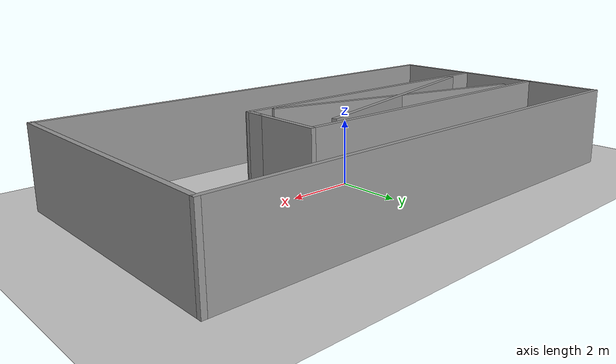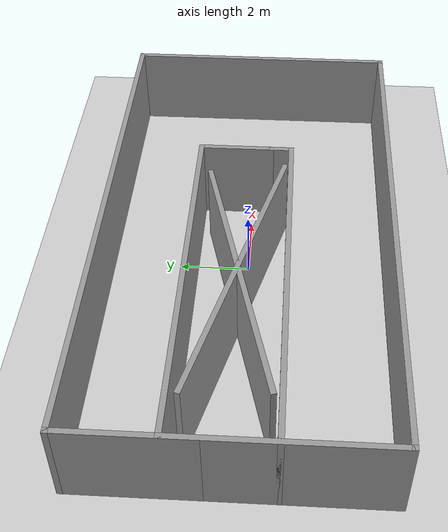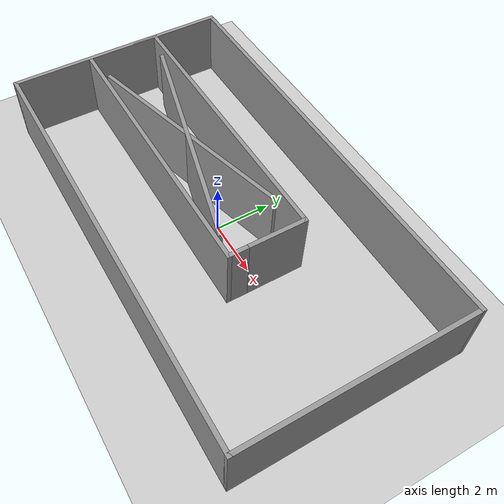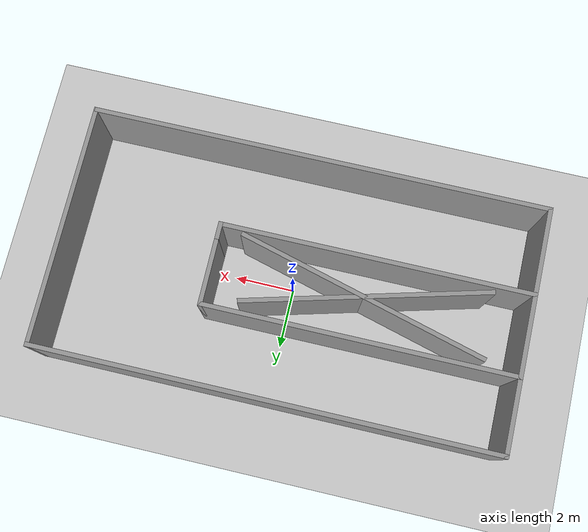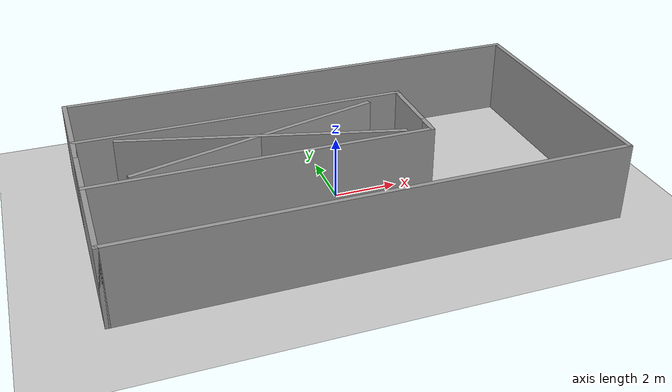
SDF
<sdf version="1.7">
 <world name="default">
  <plugin name="gazebo_ros_api_plugin" filename="libgazebo_ros_api_plugin.so"/>
  <light name="sun" type="directional">
   <pose>0 0 10 0 -0 0</pose>
   <diffuse>0.8 0.8 0.8 1</diffuse>
   <specular>0.2 0.2 0.2 1</specular>
   <attenuation>
    <range>1000</range>
    <constant>0.9</constant>
    <linear>0.01</linear>
    <quadratic>0.001</quadratic>
   </attenuation>
   <direction>-0.5 0.1 -0.9</direction>
   <spot><inner_angle>0</inner_angle><outer_angle>0</outer_angle><falloff>0</falloff></spot>
  </light>
  <model name="ground_plane">
   <static>1</static>
   <link name="link">
    <collision name="collision">
     <geometry><plane><normal>0 0 1</normal><size>100 100</size></plane></geometry>
     <surface>
      <contact><collide_bitmask>65535</collide_bitmask></contact>
      <friction><ode><mu>100</mu><mu2>50</mu2></ode></friction>
     </surface>
    </collision>
    <visual name="visual">
     <cast_shadows>0</cast_shadows>
     <geometry><plane><normal>0 0 1</normal><size>100 100</size></plane></geometry>
     <material>
      <script><uri>file://media/materials/scripts/gazebo.material</uri><name>Gazebo/Grey</name></script>
     </material>
    </visual>
   </link>
  </model>
  <gravity>0 0 -9.8</gravity>
  <magnetic_field>6e-06 2.3e-05 -4.2e-05</magnetic_field>
  <atmosphere type="adiabatic"/>
  <physics type="ode">
   <max_step_size>0.001</max_step_size>
   <real_time_factor>1</real_time_factor>
   <real_time_update_rate>1000</real_time_update_rate>
  </physics>
  <scene><ambient>0.4 0.4 0.4 1</ambient><background>0.7 0.7 0.7 1</background><shadows>1</shadows></scene>
  <spherical_coordinates>
   <surface_model>EARTH_WGS84</surface_model>
   <latitude_deg>0</latitude_deg>
   <longitude_deg>0</longitude_deg>
   <elevation>0</elevation>
   <heading_deg>0</heading_deg>
  </spherical_coordinates>
  <model name="small_room">
   <link name="Wall_0">
    <collision name="Wall_0_Collision">
     <geometry><box><size>5.75 0.15 2.5</size></box></geometry>
     <pose>0 0 1.25 0 -0 0</pose>
    </collision>
    <visual name="Wall_0_Visual">
     <pose>0 0 1.25 0 -0 0</pose>
     <geometry><box><size>5.75 0.15 2.5</size></box></geometry>
     <material>
      <script><uri>file://media/materials/scripts/gazebo.material</uri><name>Gazebo/Grey</name></script>
      <ambient>1 1 1 1</ambient>
     </material>
     <meta><layer>0</layer></meta>
    </visual>
    <pose>-7.675 -1.25 0 0 -0 -1.5708</pose>
   </link>
   <link name="Wall_1">
    <collision name="Wall_1_Collision">
     <geometry><box><size>15.5 0.15 2.5</size></box></geometry>
     <pose>0 0 1.25 0 -0 0</pose>
    </collision>
    <visual name="Wall_1_Visual">
     <pose>0 0 1.25 0 -0 0</pose>
     <geometry><box><size>15.5 0.15 2.5</size></box></geometry>
     <material>
      <script><uri>file://media/materials/scripts/gazebo.material</uri><name>Gazebo/Grey</name></script>
      <ambient>1 1 1 1</ambient>
     </material>
     <meta><layer>0</layer></meta>
    </visual>
    <pose>-0 -4.05 0 0 -0 0</pose>
   </link>
   <link name="Wall_10">
    <collision name="Wall_10_Collision">
     <geometry><box><size>0.75 0.15 2.5</size></box></geometry>
     <pose>0 0 1.25 0 -0 0</pose>
    </collision>
    <visual name="Wall_10_Visual">
     <pose>0 0 1.25 0 -0 0</pose>
     <geometry><box><size>0.75 0.15 2.5</size></box></geometry>
     <material>
      <script><uri>file://media/materials/scripts/gazebo.material</uri><name>Gazebo/Grey</name></script>
      <ambient>1 1 1 1</ambient>
     </material>
     <meta><layer>0</layer></meta>
    </visual>
    <pose>2.675 -0.85 0 0 -0 -1.5708</pose>
   </link>
   <link name="Wall_11">
    <collision name="Wall_11_Collision">
     <geometry><box><size>10.5 0.15 2.5</size></box></geometry>
     <pose>0 0 1.25 0 -0 0</pose>
    </collision>
    <visual name="Wall_11_Visual">
     <pose>0 0 1.25 0 -0 0</pose>
     <geometry><box><size>10.5 0.15 2.5</size></box></geometry>
     <material>
      <script><uri>file://media/materials/scripts/gazebo.material</uri><name>Gazebo/Grey</name></script>
      <ambient>1 1 1 1</ambient>
     </material>
     <meta><layer>0</layer></meta>
    </visual>
    <pose>-2.5 -1.15 0 0 -0 3.14159</pose>
   </link>
   <link name="Wall_13">
    <collision name="Wall_13_Collision">
     <geometry><box><size>8.75 0.15 2.5</size></box></geometry>
     <pose>0 0 1.25 0 -0 0</pose>
    </collision>
    <visual name="Wall_13_Visual">
     <pose>0 0 1.25 0 -0 0</pose>
     <geometry><box><size>8.75 0.15 2.5</size></box></geometry>
     <material>
      <script><uri>file://media/materials/scripts/gazebo.material</uri><name>Gazebo/Grey</name></script>
      <ambient>1 1 1 1</ambient>
     </material>
     <meta><layer>0</layer></meta>
    </visual>
    <pose>-2.29459 0.135374 0 0 -0 -0.261799</pose>
   </link>
   <link name="Wall_15">
    <collision name="Wall_15_Collision">
     <geometry><box><size>8.25 0.15 2.5</size></box></geometry>
     <pose>0 0 1.25 0 -0 0</pose>
    </collision>
    <visual name="Wall_15_Visual">
     <pose>0 0 1.25 0 -0 0</pose>
     <geometry><box><size>8.25 0.15 2.5</size></box></geometry>
     <material>
      <script><uri>file://media/materials/scripts/gazebo.material</uri><name>Gazebo/Grey</name></script>
      <ambient>1 1 1 1</ambient>
     </material>
     <meta><layer>0</layer></meta>
    </visual>
    <pose>-2.43551 0.124248 0 0 -0 0.261799</pose>
   </link>
   <link name="Wall_2">
    <collision name="Wall_2_Collision">
     <geometry><box><size>8.25 0.15 2.5</size></box></geometry>
     <pose>0 0 1.25 0 -0 0</pose>
    </collision>
    <visual name="Wall_2_Visual">
     <pose>0 0 1.25 0 -0 0</pose>
     <geometry><box><size>8.25 0.15 2.5</size></box></geometry>
     <material>
      <script><uri>file://media/materials/scripts/gazebo.material</uri><name>Gazebo/Grey</name></script>
      <ambient>1 1 1 1</ambient>
     </material>
     <meta><layer>0</layer></meta>
    </visual>
    <pose>7.675 -0 0 0 -0 1.5708</pose>
   </link>
   <link name="Wall_3">
    <collision name="Wall_3_Collision">
     <geometry><box><size>15.5 0.15 2.5</size></box></geometry>
     <pose>0 0 1.25 0 -0 0</pose>
    </collision>
    <visual name="Wall_3_Visual">
     <pose>0 0 1.25 0 -0 0</pose>
     <geometry><box><size>15.5 0.15 2.5</size></box></geometry>
     <material>
      <script><uri>file://media/materials/scripts/gazebo.material</uri><name>Gazebo/Grey</name></script>
      <ambient>1 1 1 1</ambient>
     </material>
     <meta><layer>0</layer></meta>
    </visual>
    <pose>-0 4.05 0 0 -0 3.14159</pose>
   </link>
   <link name="Wall_4">
    <collision name="Wall_4_Collision">
     <geometry><box><size>3.5 0.15 2.5</size></box></geometry>
     <pose>0 0 1.25 0 -0 0</pose>
    </collision>
    <visual name="Wall_4_Visual">
     <pose>0 0 1.25 0 -0 0</pose>
     <geometry><box><size>3.5 0.15 2.5</size></box></geometry>
     <material>
      <script><uri>file://media/materials/scripts/gazebo.material</uri><name>Gazebo/Grey</name></script>
      <ambient>1 1 1 1</ambient>
     </material>
     <meta><layer>0</layer></meta>
    </visual>
    <pose>-7.675 2.375 0 0 -0 -1.5708</pose>
   </link>
   <link name="Wall_8">
    <collision name="Wall_8_Collision">
     <geometry><box><size>10.5 0.15 2.5</size></box></geometry>
     <pose>0 0 1.25 0 -0 0</pose>
    </collision>
    <visual name="Wall_8_Visual">
     <pose>0 0 1.25 0 -0 0</pose>
     <geometry><box><size>10.5 0.15 2.5</size></box></geometry>
     <material>
      <script><uri>file://media/materials/scripts/gazebo.material</uri><name>Gazebo/Grey</name></script>
      <ambient>1 1 1 1</ambient>
     </material>
     <meta><layer>0</layer></meta>
    </visual>
    <pose>-2.5 1.55 0 0 -0 0</pose>
   </link>
   <link name="Wall_9">
    <collision name="Wall_9_Collision">
     <geometry><box><size>2.25 0.15 2.5</size></box></geometry>
     <pose>0 0 1.25 0 -0 0</pose>
    </collision>
    <visual name="Wall_9_Visual">
     <pose>0 0 1.25 0 -0 0</pose>
     <geometry><box><size>2.25 0.15 2.5</size></box></geometry>
     <material>
      <script><uri>file://media/materials/scripts/gazebo.material</uri><name>Gazebo/Grey</name></script>
      <ambient>1 1 1 1</ambient>
     </material>
     <meta><layer>0</layer></meta>
    </visual>
    <pose>2.675 0.5 0 0 -0 -1.5708</pose>
   </link>
   <static>1</static>
  </model>
  <light name="user_point_light_0" type="point">
   <pose>-5.69437 3.04241 1 0 -0 0</pose>
   <diffuse>0.5 0.5 0.5 1</diffuse>
   <specular>0.1 0.1 0.1 1</specular>
   <attenuation>
    <range>20</range>
    <constant>0.5</constant>
    <linear>0.01</linear>
    <quadratic>0.001</quadratic>
   </attenuation>
   <cast_shadows>0</cast_shadows>
   <direction>0 0 -1</direction>
  </light>
  <light name="user_point_light_1" type="point">
   <pose>-5.67194 -2.59533 1 0 -0 0</pose>
   <diffuse>0.5 0.5 0.5 1</diffuse>
   <specular>0.1 0.1 0.1 1</specular>
   <attenuation>
    <range>20</range>
    <constant>0.5</constant>
    <linear>0.01</linear>
    <quadratic>0.001</quadratic>
   </attenuation>
   <cast_shadows>0</cast_shadows>
   <direction>0 0 -1</direction>
  </light>
 </world>
</sdf>
